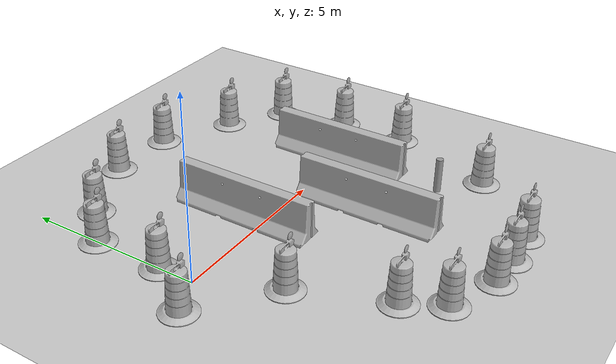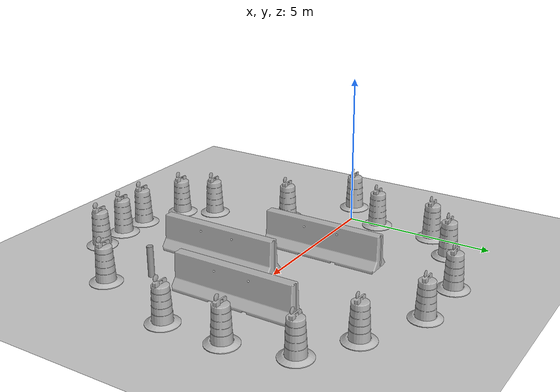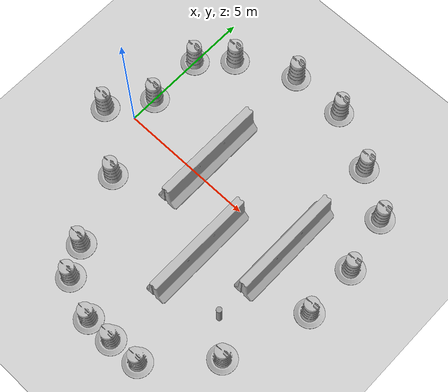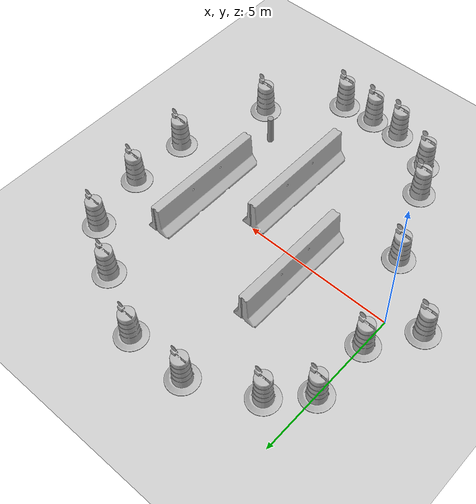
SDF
<sdf version="1.4">
 <world name="default">
  <light name="sun" type="directional">
   <pose>0 0 10 0 -0 0</pose>
   <diffuse>0.8 0.8 0.8 1</diffuse>
   <specular>0.2 0.2 0.2 1</specular>
   <attenuation>
    <range>1000</range>
    <constant>0.9</constant>
    <linear>0.01</linear>
    <quadratic>0.001</quadratic>
   </attenuation>
   <direction>-0.5 0.1 -0.9</direction>
  </light>
  <model name="ground_plane">
   <static>1</static>
   <link name="link">
    <collision name="collision">
     <geometry><plane><normal>0 0 1</normal><size>100 100</size></plane></geometry>
     <surface><friction><ode><mu>100</mu><mu2>50</mu2></ode></friction></surface>
    </collision>
    <visual name="visual">
     <cast_shadows>0</cast_shadows>
     <geometry><plane><normal>0 0 1</normal><size>100 100</size></plane></geometry>
     <material>
      <script><uri>file://media/materials/scripts/gazebo.material</uri><name>Gazebo/Grey</name></script>
     </material>
    </visual>
    <velocity_decay><linear>0</linear><angular>0</angular></velocity_decay>
   </link>
  </model>
  <physics type="ode">
   <max_step_size>0.01</max_step_size>
   <real_time_factor>1</real_time_factor>
   <real_time_update_rate>100</real_time_update_rate>
   <gravity>0 0 -9.8</gravity>
  </physics>
  <scene><ambient>0.4 0.4 0.4 1</ambient><background>0.7 0.7 0.7 1</background><shadows>1</shadows></scene>
  <model name="unit_cylinder_1">
   <pose>7.00003 -3.09913 0.500051 -0.00051 3e-06 1e-06</pose>
   <link name="link">
    <inertial>
     <mass>0.01</mass>
     <inertia><ixx>1</ixx><ixy>0</ixy><ixz>0</ixz><iyy>1</iyy><iyz>0</iyz><izz>1</izz></inertia>
    </inertial>
    <collision name="collision">
     <geometry><cylinder><radius>0.1</radius><length>1</length></cylinder></geometry>
    </collision>
    <visual name="visual">
     <geometry><cylinder><radius>0.1</radius><length>1</length></cylinder></geometry>
     <material>
      <script><uri>file://media/materials/scripts/gazebo.material</uri><name>Gazebo/Grey</name></script>
     </material>
    </visual>
    <velocity_decay><linear>0</linear><angular>0</angular></velocity_decay>
   </link>
   <static>0</static>
  </model>
  <model name="jersey_barrier">
   <static>1</static>
   <link name="link">
    <visual name="visual">
     <geometry><mesh><uri>model://jersey_barrier/meshes/jersey_barrier.dae</uri></mesh></geometry>
    </visual>
    <collision name="upright">
     <pose>0 0 0.5715 0 -0 0</pose>
     <geometry><box><size>4.06542 0.3063 1.143</size></box></geometry>
    </collision>
    <collision name="base">
     <pose>0 0 0.032258 0 -0 0</pose>
     <geometry><box><size>4.06542 0.8107 0.064516</size></box></geometry>
    </collision>
    <collision name="base2">
     <pose>0 0 0.1 0 -0 0</pose>
     <geometry><box><size>4.06542 0.65 0.1</size></box></geometry>
    </collision>
    <collision name="base3">
     <pose>0 0 0.2 0 -0 0</pose>
     <geometry><box><size>4.06542 0.5 0.1</size></box></geometry>
    </collision>
    <collision name="left-angle">
     <pose>0 -0.224 0.2401 0.9 -0 0</pose>
     <geometry><box><size>4.06542 0.5 0.064516</size></box></geometry>
    </collision>
    <collision name="right-angle">
     <pose>0 0.224 0.2401 -0.9 0 0</pose>
     <geometry><box><size>4.06542 0.5 0.064516</size></box></geometry>
    </collision>
    <velocity_decay><linear>0</linear><angular>0</angular></velocity_decay>
   </link>
   <pose>5 -2 0 0 -0 1.5708</pose>
  </model>
  <model name="jersey_barrier_0">
   <static>1</static>
   <link name="link">
    <visual name="visual">
     <geometry><mesh><uri>model://jersey_barrier/meshes/jersey_barrier.dae</uri></mesh></geometry>
    </visual>
    <collision name="upright">
     <pose>0 0 0.5715 0 -0 0</pose>
     <geometry><box><size>4.06542 0.3063 1.143</size></box></geometry>
    </collision>
    <collision name="base">
     <pose>0 0 0.032258 0 -0 0</pose>
     <geometry><box><size>4.06542 0.8107 0.064516</size></box></geometry>
    </collision>
    <collision name="base2">
     <pose>0 0 0.1 0 -0 0</pose>
     <geometry><box><size>4.06542 0.65 0.1</size></box></geometry>
    </collision>
    <collision name="base3">
     <pose>0 0 0.2 0 -0 0</pose>
     <geometry><box><size>4.06542 0.5 0.1</size></box></geometry>
    </collision>
    <collision name="left-angle">
     <pose>0 -0.224 0.2401 0.9 -0 0</pose>
     <geometry><box><size>4.06542 0.5 0.064516</size></box></geometry>
    </collision>
    <collision name="right-angle">
     <pose>0 0.224 0.2401 -0.9 0 0</pose>
     <geometry><box><size>4.06542 0.5 0.064516</size></box></geometry>
    </collision>
    <velocity_decay><linear>0</linear><angular>0</angular></velocity_decay>
   </link>
   <pose>3 0.572542 0 0 -0 1.5708</pose>
  </model>
  <model name="jersey_barrier_1">
   <static>1</static>
   <link name="link">
    <visual name="visual">
     <geometry><mesh><uri>model://jersey_barrier/meshes/jersey_barrier.dae</uri></mesh></geometry>
    </visual>
    <collision name="upright">
     <pose>0 0 0.5715 0 -0 0</pose>
     <geometry><box><size>4.06542 0.3063 1.143</size></box></geometry>
    </collision>
    <collision name="base">
     <pose>0 0 0.032258 0 -0 0</pose>
     <geometry><box><size>4.06542 0.8107 0.064516</size></box></geometry>
    </collision>
    <collision name="base2">
     <pose>0 0 0.1 0 -0 0</pose>
     <geometry><box><size>4.06542 0.65 0.1</size></box></geometry>
    </collision>
    <collision name="base3">
     <pose>0 0 0.2 0 -0 0</pose>
     <geometry><box><size>4.06542 0.5 0.1</size></box></geometry>
    </collision>
    <collision name="left-angle">
     <pose>0 -0.224 0.2401 0.9 -0 0</pose>
     <geometry><box><size>4.06542 0.5 0.064516</size></box></geometry>
    </collision>
    <collision name="right-angle">
     <pose>0 0.224 0.2401 -0.9 0 0</pose>
     <geometry><box><size>4.06542 0.5 0.064516</size></box></geometry>
    </collision>
    <velocity_decay><linear>0</linear><angular>0</angular></velocity_decay>
   </link>
   <pose>7 0 0 0 -0 1.5708</pose>
  </model>
  <model name="Construction Barrel_0">
   <link name="link">
    <inertial>
     <pose>0 0 0.4 0 -0 0</pose>
     <mass>500</mass>
     <inertia><ixx>51.2096</ixx><iyy>51.2096</iyy><izz>25</izz><ixy>0</ixy><ixz>0</ixz><iyz>0</iyz></inertia>
    </inertial>
    <collision name="collision">
     <geometry><mesh><uri>model://construction_barrel/meshes/construction_barrel.dae</uri></mesh></geometry>
    </collision>
    <visual name="visual">
     <geometry><mesh><uri>model://construction_barrel/meshes/construction_barrel.dae</uri></mesh></geometry>
    </visual>
    <velocity_decay><linear>0</linear><angular>0</angular></velocity_decay>
   </link>
   <pose>5.00996 -5.99785 -9.1e-05 0.00031 0.000179 -0.003698</pose>
   <static>0</static>
  </model>
  <model name="Construction Barrel_1">
   <link name="link">
    <inertial>
     <pose>0 0 0.4 0 -0 0</pose>
     <mass>500</mass>
     <inertia><ixx>51.2096</ixx><iyy>51.2096</iyy><izz>25</izz><ixy>0</ixy><ixz>0</ixz><iyz>0</iyz></inertia>
    </inertial>
    <collision name="collision">
     <geometry><mesh><uri>model://construction_barrel/meshes/construction_barrel.dae</uri></mesh></geometry>
    </collision>
    <visual name="visual">
     <geometry><mesh><uri>model://construction_barrel/meshes/construction_barrel.dae</uri></mesh></geometry>
    </visual>
    <velocity_decay><linear>0</linear><angular>0</angular></velocity_decay>
   </link>
   <pose>6.13539 -5.92093 -9.1e-05 0.00031 0.000179 0.000271</pose>
   <static>0</static>
  </model>
  <model name="Construction Barrel_2">
   <link name="link">
    <inertial>
     <pose>0 0 0.4 0 -0 0</pose>
     <mass>500</mass>
     <inertia><ixx>51.2096</ixx><iyy>51.2096</iyy><izz>25</izz><ixy>0</ixy><ixz>0</ixz><iyz>0</iyz></inertia>
    </inertial>
    <collision name="collision">
     <geometry><mesh><uri>model://construction_barrel/meshes/construction_barrel.dae</uri></mesh></geometry>
    </collision>
    <visual name="visual">
     <geometry><mesh><uri>model://construction_barrel/meshes/construction_barrel.dae</uri></mesh></geometry>
    </visual>
    <velocity_decay><linear>0</linear><angular>0</angular></velocity_decay>
   </link>
   <pose>3.99001 -6.00056 -9.1e-05 0.00031 0.000179 -0.002515</pose>
   <static>0</static>
  </model>
  <model name="Construction Barrel_3">
   <link name="link">
    <inertial>
     <pose>0 0 0.4 0 -0 0</pose>
     <mass>500</mass>
     <inertia><ixx>51.2096</ixx><iyy>51.2096</iyy><izz>25</izz><ixy>0</ixy><ixz>0</ixz><iyz>0</iyz></inertia>
    </inertial>
    <collision name="collision">
     <geometry><mesh><uri>model://construction_barrel/meshes/construction_barrel.dae</uri></mesh></geometry>
    </collision>
    <visual name="visual">
     <geometry><mesh><uri>model://construction_barrel/meshes/construction_barrel.dae</uri></mesh></geometry>
    </visual>
    <velocity_decay><linear>0</linear><angular>0</angular></velocity_decay>
   </link>
   <pose>2.00008 -4.42785 -9.1e-05 0.00031 0.000179 0.000271</pose>
   <static>0</static>
  </model>
  <model name="Construction Barrel_4">
   <link name="link">
    <inertial>
     <pose>0 0 0.4 0 -0 0</pose>
     <mass>500</mass>
     <inertia><ixx>51.2096</ixx><iyy>51.2096</iyy><izz>25</izz><ixy>0</ixy><ixz>0</ixz><iyz>0</iyz></inertia>
    </inertial>
    <collision name="collision">
     <geometry><mesh><uri>model://construction_barrel/meshes/construction_barrel.dae</uri></mesh></geometry>
    </collision>
    <visual name="visual">
     <geometry><mesh><uri>model://construction_barrel/meshes/construction_barrel.dae</uri></mesh></geometry>
    </visual>
    <velocity_decay><linear>0</linear><angular>0</angular></velocity_decay>
   </link>
   <pose>1.00008 -2.00004 -9.1e-05 0.00031 0.000179 0.000271</pose>
   <static>0</static>
  </model>
  <model name="Construction Barrel_5">
   <link name="link">
    <inertial>
     <pose>0 0 0.4 0 -0 0</pose>
     <mass>500</mass>
     <inertia><ixx>51.2096</ixx><iyy>51.2096</iyy><izz>25</izz><ixy>0</ixy><ixz>0</ixz><iyz>0</iyz></inertia>
    </inertial>
    <collision name="collision">
     <geometry><mesh><uri>model://construction_barrel/meshes/construction_barrel.dae</uri></mesh></geometry>
    </collision>
    <visual name="visual">
     <geometry><mesh><uri>model://construction_barrel/meshes/construction_barrel.dae</uri></mesh></geometry>
    </visual>
    <velocity_decay><linear>0</linear><angular>0</angular></velocity_decay>
   </link>
   <pose>7.5e-05 2.99996 -9.1e-05 0.00031 0.000179 0.000271</pose>
   <static>0</static>
  </model>
  <model name="Construction Barrel_6">
   <link name="link">
    <inertial>
     <pose>0 0 0.4 0 -0 0</pose>
     <mass>500</mass>
     <inertia><ixx>51.2096</ixx><iyy>51.2096</iyy><izz>25</izz><ixy>0</ixy><ixz>0</ixz><iyz>0</iyz></inertia>
    </inertial>
    <collision name="collision">
     <geometry><mesh><uri>model://construction_barrel/meshes/construction_barrel.dae</uri></mesh></geometry>
    </collision>
    <visual name="visual">
     <geometry><mesh><uri>model://construction_barrel/meshes/construction_barrel.dae</uri></mesh></geometry>
    </visual>
    <velocity_decay><linear>0</linear><angular>0</angular></velocity_decay>
   </link>
   <pose>-0.999929 -0.420961 -0.00017 -6.9e-05 -0.000543 0.000243</pose>
   <static>0</static>
  </model>
  <model name="Construction Barrel_7">
   <link name="link">
    <inertial>
     <pose>0 0 0.4 0 -0 0</pose>
     <mass>500</mass>
     <inertia><ixx>51.2096</ixx><iyy>51.2096</iyy><izz>25</izz><ixy>0</ixy><ixz>0</ixz><iyz>0</iyz></inertia>
    </inertial>
    <collision name="collision">
     <geometry><mesh><uri>model://construction_barrel/meshes/construction_barrel.dae</uri></mesh></geometry>
    </collision>
    <visual name="visual">
     <geometry><mesh><uri>model://construction_barrel/meshes/construction_barrel.dae</uri></mesh></geometry>
    </visual>
    <velocity_decay><linear>0</linear><angular>0</angular></velocity_decay>
   </link>
   <pose>6.6e-05 0.999984 -9.1e-05 0.00031 0.000179 0.000215</pose>
   <static>0</static>
  </model>
  <model name="Construction Barrel_8">
   <link name="link">
    <inertial>
     <pose>0 0 0.4 0 -0 0</pose>
     <mass>500</mass>
     <inertia><ixx>51.2096</ixx><iyy>51.2096</iyy><izz>25</izz><ixy>0</ixy><ixz>0</ixz><iyz>0</iyz></inertia>
    </inertial>
    <collision name="collision">
     <geometry><mesh><uri>model://construction_barrel/meshes/construction_barrel.dae</uri></mesh></geometry>
    </collision>
    <visual name="visual">
     <geometry><mesh><uri>model://construction_barrel/meshes/construction_barrel.dae</uri></mesh></geometry>
    </visual>
    <velocity_decay><linear>0</linear><angular>0</angular></velocity_decay>
   </link>
   <pose>3.00006 5 -0.00017 -6.9e-05 -0.000543 0.000188</pose>
   <static>0</static>
  </model>
  <model name="Construction Barrel_9">
   <link name="link">
    <inertial>
     <pose>0 0 0.4 0 -0 0</pose>
     <mass>500</mass>
     <inertia><ixx>51.2096</ixx><iyy>51.2096</iyy><izz>25</izz><ixy>0</ixy><ixz>0</ixz><iyz>0</iyz></inertia>
    </inertial>
    <collision name="collision">
     <geometry><mesh><uri>model://construction_barrel/meshes/construction_barrel.dae</uri></mesh></geometry>
    </collision>
    <visual name="visual">
     <geometry><mesh><uri>model://construction_barrel/meshes/construction_barrel.dae</uri></mesh></geometry>
    </visual>
    <velocity_decay><linear>0</linear><angular>0</angular></velocity_decay>
   </link>
   <pose>1.00006 4 -9.1e-05 0.00031 0.000179 0.00016</pose>
   <static>0</static>
  </model>
  <model name="Construction Barrel_10">
   <link name="link">
    <inertial>
     <pose>0 0 0.4 0 -0 0</pose>
     <mass>500</mass>
     <inertia><ixx>51.2096</ixx><iyy>51.2096</iyy><izz>25</izz><ixy>0</ixy><ixz>0</ixz><iyz>0</iyz></inertia>
    </inertial>
    <collision name="collision">
     <geometry><mesh><uri>model://construction_barrel/meshes/construction_barrel.dae</uri></mesh></geometry>
    </collision>
    <visual name="visual">
     <geometry><mesh><uri>model://construction_barrel/meshes/construction_barrel.dae</uri></mesh></geometry>
    </visual>
    <velocity_decay><linear>0</linear><angular>0</angular></velocity_decay>
   </link>
   <pose>5.00005 5.00002 -0.00017 -6.9e-05 -0.000543 0.000132</pose>
   <static>0</static>
  </model>
  <model name="Construction Barrel_11">
   <link name="link">
    <inertial>
     <pose>0 0 0.4 0 -0 0</pose>
     <mass>500</mass>
     <inertia><ixx>51.2096</ixx><iyy>51.2096</iyy><izz>25</izz><ixy>0</ixy><ixz>0</ixz><iyz>0</iyz></inertia>
    </inertial>
    <collision name="collision">
     <geometry><mesh><uri>model://construction_barrel/meshes/construction_barrel.dae</uri></mesh></geometry>
    </collision>
    <visual name="visual">
     <geometry><mesh><uri>model://construction_barrel/meshes/construction_barrel.dae</uri></mesh></geometry>
    </visual>
    <velocity_decay><linear>0</linear><angular>0</angular></velocity_decay>
   </link>
   <pose>7.00005 4.00002 -9.1e-05 0.00031 0.000179 0.000104</pose>
   <static>0</static>
  </model>
  <model name="Construction Barrel_12">
   <link name="link">
    <inertial>
     <pose>0 0 0.4 0 -0 0</pose>
     <mass>500</mass>
     <inertia><ixx>51.2096</ixx><iyy>51.2096</iyy><izz>25</izz><ixy>0</ixy><ixz>0</ixz><iyz>0</iyz></inertia>
    </inertial>
    <collision name="collision">
     <geometry><mesh><uri>model://construction_barrel/meshes/construction_barrel.dae</uri></mesh></geometry>
    </collision>
    <visual name="visual">
     <geometry><mesh><uri>model://construction_barrel/meshes/construction_barrel.dae</uri></mesh></geometry>
    </visual>
    <velocity_decay><linear>0</linear><angular>0</angular></velocity_decay>
   </link>
   <pose>8.00004 -3.99996 -0.00017 -6.9e-05 -0.000543 7.7e-05</pose>
   <static>0</static>
  </model>
  <model name="Construction Barrel_13">
   <link name="link">
    <inertial>
     <pose>0 0 0.4 0 -0 0</pose>
     <mass>500</mass>
     <inertia><ixx>51.2096</ixx><iyy>51.2096</iyy><izz>25</izz><ixy>0</ixy><ixz>0</ixz><iyz>0</iyz></inertia>
    </inertial>
    <collision name="collision">
     <geometry><mesh><uri>model://construction_barrel/meshes/construction_barrel.dae</uri></mesh></geometry>
    </collision>
    <visual name="visual">
     <geometry><mesh><uri>model://construction_barrel/meshes/construction_barrel.dae</uri></mesh></geometry>
    </visual>
    <velocity_decay><linear>0</linear><angular>0</angular></velocity_decay>
   </link>
   <pose>9.00004 -0.999959 -9.1e-05 0.00031 0.000179 4.9e-05</pose>
   <static>0</static>
  </model>
  <model name="Construction Barrel_14">
   <link name="link">
    <inertial>
     <pose>0 0 0.4 0 -0 0</pose>
     <mass>500</mass>
     <inertia><ixx>51.2096</ixx><iyy>51.2096</iyy><izz>25</izz><ixy>0</ixy><ixz>0</ixz><iyz>0</iyz></inertia>
    </inertial>
    <collision name="collision">
     <geometry><mesh><uri>model://construction_barrel/meshes/construction_barrel.dae</uri></mesh></geometry>
    </collision>
    <visual name="visual">
     <geometry><mesh><uri>model://construction_barrel/meshes/construction_barrel.dae</uri></mesh></geometry>
    </visual>
    <velocity_decay><linear>0</linear><angular>0</angular></velocity_decay>
   </link>
   <pose>9.00004 1.00005 -0.00017 -6.9e-05 -0.000543 2.2e-05</pose>
   <static>0</static>
  </model>
  <model name="Construction Barrel_15">
   <link name="link">
    <inertial>
     <pose>0 0 0.4 0 -0 0</pose>
     <mass>500</mass>
     <inertia><ixx>51.2096</ixx><iyy>51.2096</iyy><izz>25</izz><ixy>0</ixy><ixz>0</ixz><iyz>0</iyz></inertia>
    </inertial>
    <collision name="collision">
     <geometry><mesh><uri>model://construction_barrel/meshes/construction_barrel.dae</uri></mesh></geometry>
    </collision>
    <visual name="visual">
     <geometry><mesh><uri>model://construction_barrel/meshes/construction_barrel.dae</uri></mesh></geometry>
    </visual>
    <velocity_decay><linear>0</linear><angular>0</angular></velocity_decay>
   </link>
   <pose>8.55845 3.00006 -9.1e-05 0.00031 0.000179 -6e-06</pose>
   <static>0</static>
  </model>
  <model name="Construction Barrel_16">
   <link name="link">
    <inertial>
     <pose>0 0 0.4 0 -0 0</pose>
     <mass>500</mass>
     <inertia><ixx>51.2096</ixx><iyy>51.2096</iyy><izz>25</izz><ixy>0</ixy><ixz>0</ixz><iyz>0</iyz></inertia>
    </inertial>
    <collision name="collision">
     <geometry><mesh><uri>model://construction_barrel/meshes/construction_barrel.dae</uri></mesh></geometry>
    </collision>
    <visual name="visual">
     <geometry><mesh><uri>model://construction_barrel/meshes/construction_barrel.dae</uri></mesh></geometry>
    </visual>
    <velocity_decay><linear>0</linear><angular>0</angular></velocity_decay>
   </link>
   <pose>2.56283 -5.44055 -0.00017 -6.9e-05 -0.000543 -3.4e-05</pose>
   <static>0</static>
  </model>
 </world>
</sdf>
